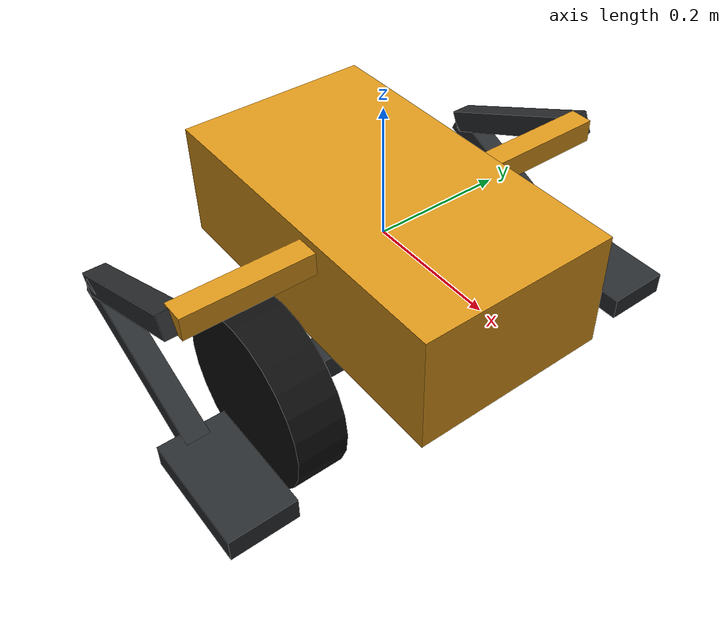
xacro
<?xml version="1.0"?>
<robot name="wheel_leg_robot" xmlns:xacro="http://www.ros.org/wiki/xacro">
  <!-- 单位：m、kg、rad。X 向前、Y 向左、Z 向上；以下为教学初稿参数。 -->
  <xacro:arg name="static_display" default="true"/>
  <xacro:arg name="scene_file" default=""/>
  <xacro:arg name="planning_file" default=""/>
  <xacro:arg name="executor_library" default="librobot_executor.so"/>
  <xacro:property name="body_x" value="0.54"/>
  <xacro:property name="body_y" value="0.30"/>
  <xacro:property name="body_z" value="0.18"/>
  <xacro:property name="body_mass" value="4.0"/>
  <xacro:property name="wheel_radius" value="0.14"/>
  <xacro:property name="wheel_width" value="0.08"/>
  <xacro:property name="wheel_separation" value="0.42"/>
  <xacro:property name="wheel_mass" value="0.5"/>
  <xacro:property name="carrier_drop" value="0.18"/>
  <xacro:property name="carrier_x" value="0.05"/>
  <xacro:property name="carrier_z" value="0.04"/>
  <xacro:property name="carrier_mass" value="0.4"/>
  <xacro:property name="lift_travel" value="0.22"/>
  <xacro:property name="upper_length" value="0.28"/>
  <xacro:property name="lower_length" value="0.28"/>
  <xacro:property name="leg_width" value="0.035"/>
  <xacro:property name="leg_mass" value="0.25"/>
  <xacro:property name="shoulder_x" value="0.04"/>
  <xacro:property name="shoulder_y" value="0.34"/>
  <xacro:property name="shoulder_z" value="0.06"/>
  <xacro:property name="foot_length" value="0.18"/>
  <xacro:property name="foot_width" value="0.10"/>
  <xacro:property name="foot_height" value="0.035"/>
  <xacro:property name="foot_mass" value="0.15"/>
  <!-- 零关节值即收腿姿态：安装角之和为 0，足底水平；不是控制器给定值。 -->
  <xacro:property name="shoulder_mount_pitch" value="1.15"/>
  <xacro:property name="knee_mount_pitch" value="-2.30"/>
  <xacro:property name="ankle_mount_pitch" value="1.15"/>
  <xacro:property name="joint_effort" value="10.0"/>
  <xacro:property name="joint_speed" value="1.0"/>
  <xacro:property name="leg_joint_speed" value="2.0"/>
  <xacro:property name="pitch_limit" value="1.57"/>

  <!-- URDF 与 Gazebo 共用颜色：参考 Spot 的黄黑搭配：机身哑光金黄、双侧肢体石墨黑、双轮橡胶黑。 -->
  <xacro:property name="body_rgba" value="0.85 0.58 0.10 1"/>
  <xacro:property name="wheel_rgba" value="0.055 0.055 0.055 1"/>
  <xacro:property name="limb_rgba" value="0.16 0.17 0.18 1"/>
  <material name="body_color"><color rgba="${body_rgba}"/></material>
  <material name="wheel_color"><color rgba="${wheel_rgba}"/></material>
  <material name="limb_color"><color rgba="${limb_rgba}"/></material>

  <!-- Gazebo Classic 需要显式 visual 材质才能保留自定义 RGBA。 -->
  <xacro:macro name="gazebo_color" params="link rgba">
    <gazebo reference="${link}">
      <visual>
        <material>
          <ambient>${rgba}</ambient>
          <diffuse>${rgba}</diffuse>
          <specular>0.08 0.08 0.08 1</specular>
        </material>
      </visual>
    </gazebo>
  </xacro:macro>

  <!-- 箱体惯量按均匀长方体计算，仅为合法模型参数，不代表动力学标定。 -->
  <xacro:macro name="box_parts" params="sx sy sz mass xyz material">
    <visual>
      <origin xyz="${xyz}"/>
      <geometry><box size="${sx} ${sy} ${sz}"/></geometry>
      <material name="${material}"/>
    </visual>
    <collision>
      <origin xyz="${xyz}"/>
      <geometry><box size="${sx} ${sy} ${sz}"/></geometry>
    </collision>
    <inertial>
      <origin xyz="${xyz}"/>
      <mass value="${mass}"/>
      <inertia ixx="${mass * (sy*sy + sz*sz) / 12.0}"
               iyy="${mass * (sx*sx + sz*sz) / 12.0}"
               izz="${mass * (sx*sx + sy*sy) / 12.0}"
               ixy="0" ixz="0" iyz="0"/>
    </inertial>
  </xacro:macro>

  <link name="base_link">
    <xacro:box_parts sx="${body_x}" sy="${body_y}" sz="${body_z}"
                     mass="${body_mass}" xyz="0 0 0" material="body_color"/>
    <!-- 肩部横梁归属机身，不新增连杆或关节；连接两侧腿与机身。 -->
    <visual>
      <origin xyz="${shoulder_x} 0 ${shoulder_z}"/>
      <geometry><box size="${leg_width} ${2*shoulder_y} ${leg_width}"/></geometry>
      <material name="body_color"/>
    </visual>
    <collision>
      <origin xyz="${shoulder_x} 0 ${shoulder_z}"/>
      <geometry><box size="${leg_width} ${2*shoulder_y} ${leg_width}"/></geometry>
    </collision>
  </link>
  <xacro:gazebo_color link="base_link" rgba="${body_rgba}"/>

  <link name="wheel_carrier">
    <xacro:box_parts sx="${carrier_x}" sy="${wheel_separation}" sz="${carrier_z}"
                     mass="${carrier_mass}" xyz="0 0 0" material="limb_color"/>
    <!-- 升降连接杆的上端在初始姿态连接机身底面。 -->
    <visual>
      <origin xyz="0 0 ${(carrier_drop-body_z/2)/2}"/>
      <geometry><box size="${carrier_x} ${carrier_x} ${carrier_drop-body_z/2}"/></geometry>
      <material name="limb_color"/>
    </visual>
    <collision>
      <origin xyz="0 0 ${(carrier_drop-body_z/2)/2}"/>
      <geometry><box size="${carrier_x} ${carrier_x} ${carrier_drop-body_z/2}"/></geometry>
    </collision>
  </link>
  <xacro:gazebo_color link="wheel_carrier" rgba="${limb_rgba}"/>

  <joint name="wheel_lift_joint" type="prismatic">
    <parent link="base_link"/><child link="wheel_carrier"/>
    <origin xyz="0 0 ${-carrier_drop}"/>
    <axis xyz="0 0 1"/>
    <limit lower="0" upper="${lift_travel}" effort="${joint_effort}" velocity="${joint_speed}"/>
  </joint>

  <xacro:macro name="wheel_and_leg" params="side sign material">
    <link name="${side}_wheel">
      <visual>
        <!-- URDF 圆柱沿局部 Z，绕 X 旋转后轮轴沿 Y。 -->
        <origin rpy="${pi/2} 0 0"/>
        <geometry><cylinder radius="${wheel_radius}" length="${wheel_width}"/></geometry>
        <material name="wheel_color"/>
      </visual>
      <collision>
        <origin rpy="${pi/2} 0 0"/>
        <geometry><cylinder radius="${wheel_radius}" length="${wheel_width}"/></geometry>
      </collision>
      <inertial>
        <mass value="${wheel_mass}"/>
        <inertia ixx="${wheel_mass * (3*wheel_radius*wheel_radius + wheel_width*wheel_width)/12}"
                 iyy="${wheel_mass * wheel_radius*wheel_radius/2}"
                 izz="${wheel_mass * (3*wheel_radius*wheel_radius + wheel_width*wheel_width)/12}"
                 ixy="0" ixz="0" iyz="0"/>
      </inertial>
    </link>
    <xacro:gazebo_color link="${side}_wheel" rgba="${wheel_rgba}"/>

    <joint name="${side}_wheel_joint" type="continuous">
      <parent link="wheel_carrier"/><child link="${side}_wheel"/>
      <origin xyz="0 ${sign*wheel_separation/2} 0"/>
      <axis xyz="0 1 0"/>
      <limit effort="${joint_effort}" velocity="${joint_speed}"/>
    </joint>

    <link name="${side}_hip_yaw">
      <inertial><mass value="0.001"/><inertia ixx="0.000001" ixy="0" ixz="0" iyy="0.000001" iyz="0" izz="0.000001"/></inertial>
    </link>
    <joint name="${side}_hip_yaw_joint" type="revolute">
      <parent link="base_link"/><child link="${side}_hip_yaw"/>
      <origin xyz="${shoulder_x} ${sign*shoulder_y} ${shoulder_z}"/>
      <axis xyz="0 0 1"/>
      <limit lower="-1.57" upper="1.57" effort="${joint_effort}" velocity="${leg_joint_speed}"/>
    </joint>
    <link name="${side}_upper_leg">
      <xacro:box_parts sx="${leg_width}" sy="${leg_width}" sz="${upper_length}"
                       mass="${leg_mass}" xyz="0 0 ${-upper_length/2}" material="${material}"/>
    </link>
    <xacro:gazebo_color link="${side}_upper_leg" rgba="${limb_rgba}"/>

    <joint name="${side}_shoulder_joint" type="revolute">
      <parent link="${side}_hip_yaw"/><child link="${side}_upper_leg"/>
      <origin rpy="0 ${shoulder_mount_pitch} 0"/>
      <axis xyz="0 1 0"/>
      <limit lower="${-pitch_limit}" upper="${pitch_limit}" effort="${joint_effort}" velocity="${leg_joint_speed}"/>
    </joint>

    <link name="${side}_lower_leg">
      <xacro:box_parts sx="${leg_width}" sy="${leg_width}" sz="${lower_length}"
                       mass="${leg_mass}" xyz="0 0 ${-lower_length/2}" material="${material}"/>
    </link>
    <xacro:gazebo_color link="${side}_lower_leg" rgba="${limb_rgba}"/>

    <joint name="${side}_knee_joint" type="revolute">
      <parent link="${side}_upper_leg"/><child link="${side}_lower_leg"/>
      <origin xyz="0 0 ${-upper_length}" rpy="0 ${knee_mount_pitch} 0"/>
      <axis xyz="0 1 0"/>
      <limit lower="${-pitch_limit}" upper="${pitch_limit}" effort="${joint_effort}" velocity="${leg_joint_speed}"/>
    </joint>

    <link name="${side}_foot">
      <xacro:box_parts sx="${foot_length}" sy="${foot_width}" sz="${foot_height}"
                       mass="${foot_mass}" xyz="${foot_length/2-leg_width/2} 0 0" material="${material}"/>
    </link>
    <xacro:gazebo_color link="${side}_foot" rgba="${limb_rgba}"/>

    <joint name="${side}_ankle_joint" type="revolute">
      <parent link="${side}_lower_leg"/><child link="${side}_foot"/>
      <origin xyz="0 0 ${-lower_length}" rpy="0 ${ankle_mount_pitch} 0"/>
      <axis xyz="0 1 0"/>
      <limit lower="${-pitch_limit}" upper="${pitch_limit}" effort="${joint_effort}" velocity="${leg_joint_speed}"/>
    </joint>
  </xacro:macro>
  <xacro:wheel_and_leg side="left" sign="${1}" material="limb_color"/>
  <xacro:wheel_and_leg side="right" sign="${-1}" material="limb_color"/>

  <!-- 静态模型由插件逐连杆执行运动学轨迹，不启用动力学平衡控制。 -->
  <gazebo>
    <static>$(arg static_display)</static>
    <plugin name="robot_executor" filename="$(arg executor_library)">
      <scene_file>$(arg scene_file)</scene_file>
      <planning_file>$(arg planning_file)</planning_file>
    </plugin>
  </gazebo>
</robot>
